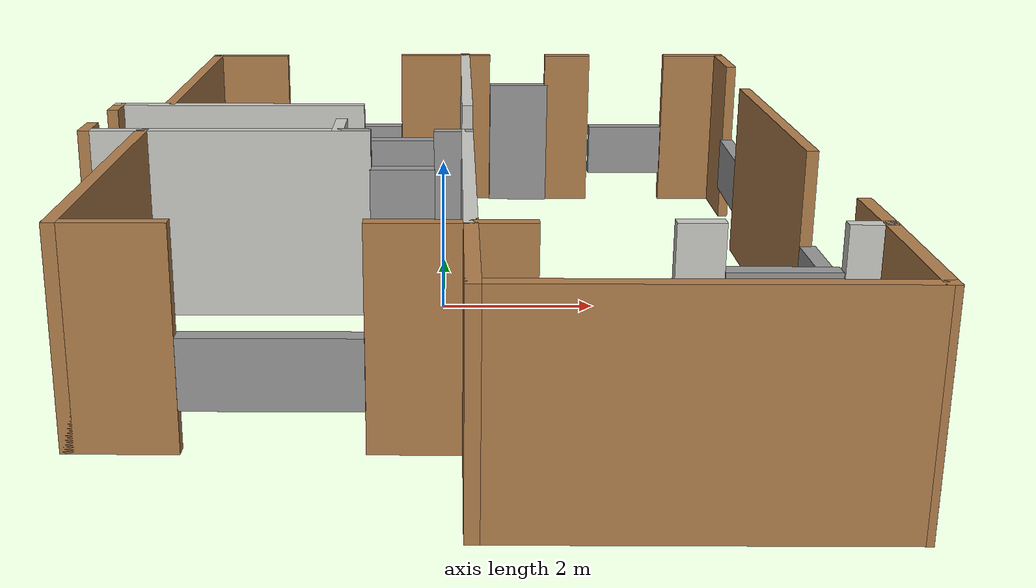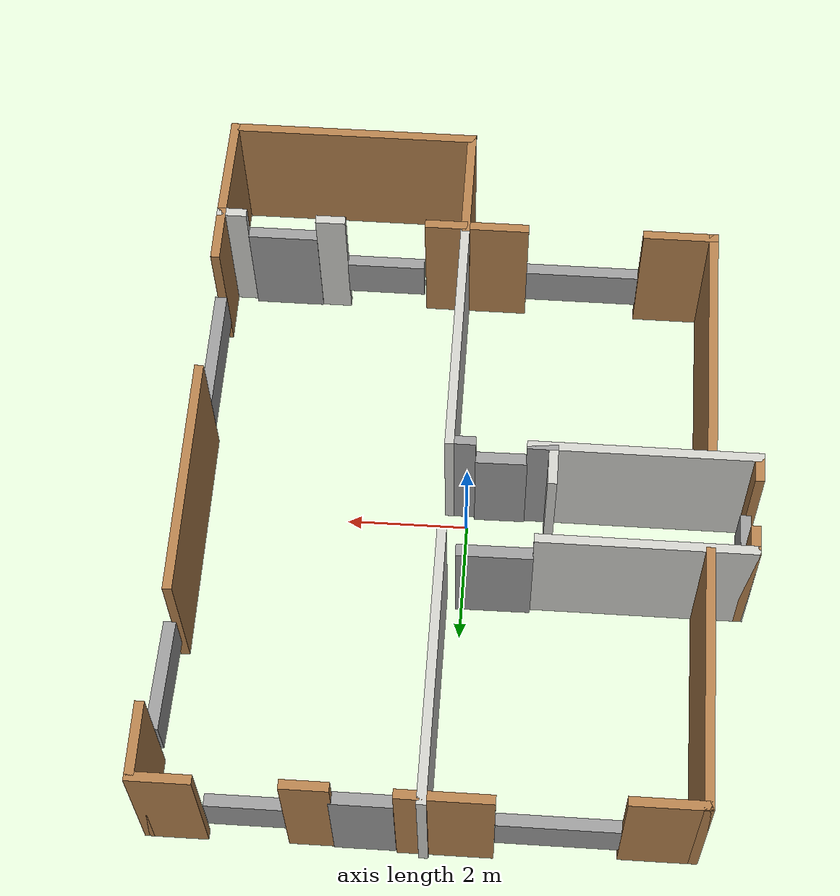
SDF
<?xml version='1.0'?>
<sdf version='1.7'>
  <model name='house'>
    <pose>-0.001405 -0.283975 0 0 -0 0</pose>
    <link name='Door_0'>
      <collision name='Door_0_Collision'>
        <geometry>
          <box>
            <size>1.22582 0.2 2</size>
          </box>
        </geometry>
        <pose>0 0 1 0 -0 0</pose>
      </collision>
      <visual name='Door_0_Visual'>
        <pose>0 0 1 0 -0 0</pose>
        <geometry>
          <box>
            <size>1.22582 0.2 2</size>
          </box>
        </geometry>
        <material>
          <script>
            <uri>file://media/materials/scripts/gazebo.material</uri>
            <name>Gazebo/Grey</name>
          </script>
        </material>
      </visual>
      <pose>-0.509223 1.66981 0 0 0 -3.13482</pose>
    </link>
    <link name='Door_1'>
      <collision name='Door_1_Collision'>
        <geometry>
          <box>
            <size>0.966492 0.2 2</size>
          </box>
        </geometry>
        <pose>0 0 1 0 -0 0</pose>
      </collision>
      <visual name='Door_1_Visual'>
        <pose>0 0 1 0 -0 0</pose>
        <geometry>
          <box>
            <size>0.966492 0.2 2</size>
          </box>
        </geometry>
        <material>
          <script>
            <uri>file://media/materials/scripts/gazebo.material</uri>
            <name>Gazebo/Grey</name>
          </script>
        </material>
      </visual>
      <pose>1.2342 5.85501 0 0 -0 0</pose>
    </link>
    <link name='Door_3'>
      <collision name='Door_3_Collision'>
        <geometry>
          <box>
            <size>1.17221 0.2 2</size>
          </box>
        </geometry>
        <pose>0 0 1 0 -0 0</pose>
      </collision>
      <visual name='Door_3_Visual'>
        <pose>0 0 1 0 -0 0</pose>
        <geometry>
          <box>
            <size>1.17221 0.2 2</size>
          </box>
        </geometry>
        <material>
          <script>
            <uri>file://media/materials/scripts/gazebo.material</uri>
            <name>Gazebo/Grey</name>
          </script>
        </material>
      </visual>
      <pose>3.41888 -4.14228 0 0 0 -3.14129</pose>
    </link>
    <link name='Door_4'>
      <collision name='Door_4_Collision'>
        <geometry>
          <box>
            <size>0.835854 0.2 2</size>
          </box>
        </geometry>
        <pose>0 0 1 0 -0 0</pose>
      </collision>
      <visual name='Door_4_Visual'>
        <pose>0 0 1 0 -0 0</pose>
        <geometry>
          <box>
            <size>0.835854 0.2 2</size>
          </box>
        </geometry>
        <material>
          <script>
            <uri>file://media/materials/scripts/gazebo.material</uri>
            <name>Gazebo/Grey</name>
          </script>
        </material>
      </visual>
      <pose>-0.529344 -0.005516 0 0 -0 0.009241</pose>
    </link>
    <link name='Wall_101'>
      <collision name='Wall_101_Collision'>
        <geometry>
          <box>
            <size>2 0.15 2.5</size>
          </box>
        </geometry>
        <pose>0 0 1.25 0 -0 0</pose>
      </collision>
      <visual name='Wall_101_Visual'>
        <pose>0 0 1.25 0 -0 0</pose>
        <geometry>
          <box>
            <size>2 0.15 2.5</size>
          </box>
        </geometry>
        <material>
          <script>
            <uri>file://media/materials/scripts/gazebo.material</uri>
            <name>Gazebo/Wood</name>
          </script>
          <ambient>1 1 1 1</ambient>
        </material>
        <meta>
          <layer>0</layer>
        </meta>
      </visual>
      <pose>0.306622 -5.04646 0 0 -0 -1.5708</pose>
    </link>
    <link name='Wall_102'>
      <collision name='Wall_102_Collision'>
        <geometry>
          <box>
            <size>4.25 0.15 2.5</size>
          </box>
        </geometry>
        <pose>0 0 1.25 0 -0 0</pose>
      </collision>
      <visual name='Wall_102_Visual'>
        <pose>0 0 1.25 0 -0 0</pose>
        <geometry>
          <box>
            <size>4.25 0.15 2.5</size>
          </box>
        </geometry>
        <material>
          <script>
            <uri>file://media/materials/scripts/gazebo.material</uri>
            <name>Gazebo/Wood</name>
          </script>
          <ambient>1 1 1 1</ambient>
        </material>
        <meta>
          <layer>0</layer>
        </meta>
      </visual>
      <pose>2.35662 -5.97146 0 0 -0 0</pose>
    </link>
    <link name='Wall_103'>
      <collision name='Wall_103_Collision'>
        <geometry>
          <box>
            <size>1.94161 0.15 2.5</size>
          </box>
        </geometry>
        <pose>0 0 1.25 0 -0 0</pose>
      </collision>
      <visual name='Wall_103_Visual'>
        <pose>0 0 1.25 0 -0 0</pose>
        <geometry>
          <box>
            <size>1.94161 0.15 2.5</size>
          </box>
        </geometry>
        <material>
          <script>
            <uri>file://media/materials/scripts/gazebo.material</uri>
            <name>Gazebo/Wood</name>
          </script>
          <ambient>1 1 1 1</ambient>
        </material>
        <meta>
          <layer>0</layer>
        </meta>
      </visual>
      <pose>4.42235 -5.0758 0 0 -0 1.55324</pose>
    </link>
    <link name='Wall_11'>
      <collision name='Wall_11_Collision'>
        <geometry>
          <box>
            <size>4.25 0.15 2.5</size>
          </box>
        </geometry>
        <pose>0 0 1.25 0 -0 0</pose>
      </collision>
      <visual name='Wall_11_Visual'>
        <pose>0 0 1.25 0 -0 0</pose>
        <geometry>
          <box>
            <size>4.25 0.15 2.5</size>
          </box>
        </geometry>
        <material>
          <script>
            <uri>file://media/materials/scripts/gazebo.material</uri>
            <name>Gazebo/CeilingTiled</name>
          </script>
          <ambient>1 1 1 1</ambient>
        </material>
        <meta>
          <layer>0</layer>
        </meta>
      </visual>
      <pose>0.306622 -2.07146 0 0 -0 1.5708</pose>
    </link>
    <link name='Wall_14'>
      <collision name='Wall_14_Collision'>
        <geometry>
          <box>
            <size>0.75 0.15 2.5</size>
          </box>
        </geometry>
        <pose>0 0 1.25 0 -0 0</pose>
      </collision>
      <visual name='Wall_14_Visual'>
        <pose>0 0 1.25 0 -0 0</pose>
        <geometry>
          <box>
            <size>0.75 0.15 2.5</size>
          </box>
        </geometry>
        <material>
          <script>
            <uri>file://media/materials/scripts/gazebo.material</uri>
            <name>Gazebo/CeilingTiled</name>
          </script>
          <ambient>1 1 1 1</ambient>
        </material>
        <meta>
          <layer>0</layer>
        </meta>
      </visual>
      <pose>-1.35343 0.29375 0 0 -0 -1.5708</pose>
    </link>
    <link name='Wall_15'>
      <collision name='Wall_15_Collision'>
        <geometry>
          <box>
            <size>0.5 0.15 2.5</size>
          </box>
        </geometry>
        <pose>0 0 1.25 0 -0 0</pose>
      </collision>
      <visual name='Wall_15_Visual'>
        <pose>0 0 1.25 0 -0 0</pose>
        <geometry>
          <box>
            <size>0.5 0.15 2.5</size>
          </box>
        </geometry>
        <material>
          <script>
            <uri>file://media/materials/scripts/gazebo.material</uri>
            <name>Gazebo/Grey</name>
          </script>
          <ambient>1 1 1 1</ambient>
        </material>
        <meta>
          <layer>0</layer>
        </meta>
      </visual>
      <pose>-1.17843 -0.00625 0 0 -0 0</pose>
    </link>
    <link name='Wall_16'>
      <collision name='Wall_16_Collision'>
        <geometry>
          <box>
            <size>3.75 0.15 2.5</size>
          </box>
        </geometry>
        <pose>0 0 1.25 0 -0 0</pose>
      </collision>
      <visual name='Wall_16_Visual'>
        <pose>0 0 1.25 0 -0 0</pose>
        <geometry>
          <box>
            <size>3.75 0.15 2.5</size>
          </box>
        </geometry>
        <material>
          <script>
            <uri>file://media/materials/scripts/gazebo.material</uri>
            <name>Gazebo/CeilingTiled</name>
          </script>
          <ambient>1 1 1 1</ambient>
        </material>
        <meta>
          <layer>0</layer>
        </meta>
      </visual>
      <pose>-2.80343 -0.00625 0 0 -0 3.14159</pose>
    </link>
    <link name='Wall_17'>
      <collision name='Wall_17_Collision'>
        <geometry>
          <box>
            <size>0.5 0.15 2.5</size>
          </box>
        </geometry>
        <pose>0 0 1.25 0 -0 0</pose>
      </collision>
      <visual name='Wall_17_Visual'>
        <pose>0 0 1.25 0 -0 0</pose>
        <geometry>
          <box>
            <size>0.5 0.15 2.5</size>
          </box>
        </geometry>
        <material>
          <script>
            <uri>file://media/materials/scripts/gazebo.material</uri>
            <name>Gazebo/Wood</name>
          </script>
          <ambient>1 1 1 1</ambient>
        </material>
        <meta>
          <layer>0</layer>
        </meta>
      </visual>
      <pose>-4.60343 0.16875 0 0 -0 1.5708</pose>
    </link>
    <link name='Wall_19'>
      <collision name='Wall_19_Collision'>
        <geometry>
          <box>
            <size>0.5 0.15 2.5</size>
          </box>
        </geometry>
        <pose>0 0 1.25 0 -0 0</pose>
      </collision>
      <visual name='Wall_19_Visual'>
        <pose>0 0 1.25 0 -0 0</pose>
        <geometry>
          <box>
            <size>0.5 0.15 2.5</size>
          </box>
        </geometry>
        <material>
          <script>
            <uri>file://media/materials/scripts/gazebo.material</uri>
            <name>Gazebo/Wood</name>
          </script>
          <ambient>1 1 1 1</ambient>
        </material>
        <meta>
          <layer>0</layer>
        </meta>
      </visual>
      <pose>-4.53893 1.45875 0 0 -0 1.5708</pose>
    </link>
    <link name='Wall_20'>
      <collision name='Wall_20_Collision'>
        <geometry>
          <box>
            <size>3.5 0.15 2.5</size>
          </box>
        </geometry>
        <pose>0 0 1.25 0 -0 0</pose>
      </collision>
      <visual name='Wall_20_Visual'>
        <pose>0 0 1.25 0 -0 0</pose>
        <geometry>
          <box>
            <size>3.5 0.15 2.5</size>
          </box>
        </geometry>
        <material>
          <script>
            <uri>file://media/materials/scripts/gazebo.material</uri>
            <name>Gazebo/CeilingTiled</name>
          </script>
          <ambient>1 1 1 1</ambient>
        </material>
        <meta>
          <layer>0</layer>
        </meta>
      </visual>
      <pose>-2.86393 1.63375 0 0 -0 0</pose>
    </link>
    <link name='Wall_26'>
      <collision name='Wall_26_Collision'>
        <geometry>
          <box>
            <size>4.25 0.15 2.5</size>
          </box>
        </geometry>
        <pose>0 0 1.25 0 -0 0</pose>
      </collision>
      <visual name='Wall_26_Visual'>
        <pose>0 0 1.25 0 -0 0</pose>
        <geometry>
          <box>
            <size>4.25 0.15 2.5</size>
          </box>
        </geometry>
        <material>
          <script>
            <uri>file://media/materials/scripts/gazebo.material</uri>
            <name>Gazebo/Wood</name>
          </script>
          <ambient>1 1 1 1</ambient>
        </material>
        <meta>
          <layer>0</layer>
        </meta>
      </visual>
      <pose>-3.8433 3.75109 0 0 -0 1.5708</pose>
    </link>
    <link name='Wall_27'>
      <collision name='Wall_27_Collision'>
        <geometry>
          <box>
            <size>1.25 0.15 2.5</size>
          </box>
        </geometry>
        <pose>0 0 1.25 0 -0 0</pose>
      </collision>
      <visual name='Wall_27_Visual'>
        <pose>0 0 1.25 0 -0 0</pose>
        <geometry>
          <box>
            <size>1.25 0.15 2.5</size>
          </box>
        </geometry>
        <material>
          <script>
            <uri>file://media/materials/scripts/gazebo.material</uri>
            <name>Gazebo/Wood</name>
          </script>
          <ambient>1 1 1 1</ambient>
        </material>
        <meta>
          <layer>0</layer>
        </meta>
      </visual>
      <pose>-3.2933 5.80109 0 0 -0 0</pose>
    </link>
    <link name='Wall_29'>
      <collision name='Wall_29_Collision'>
        <geometry>
          <box>
            <size>1.5 0.15 2.5</size>
          </box>
        </geometry>
        <pose>0 0 1.25 0 -0 0</pose>
      </collision>
      <visual name='Wall_29_Visual'>
        <pose>0 0 1.25 0 -0 0</pose>
        <geometry>
          <box>
            <size>1.5 0.15 2.5</size>
          </box>
        </geometry>
        <material>
          <script>
            <uri>file://media/materials/scripts/gazebo.material</uri>
            <name>Gazebo/Wood</name>
          </script>
          <ambient>1 1 1 1</ambient>
        </material>
        <meta>
          <layer>0</layer>
        </meta>
      </visual>
      <pose>-0.007528 5.90664 0 0 -0 0</pose>
    </link>
    <link name='Wall_31'>
      <collision name='Wall_31_Collision'>
        <geometry>
          <box>
            <size>4.5 0.15 2.5</size>
          </box>
        </geometry>
        <pose>0 0 1.25 0 -0 0</pose>
      </collision>
      <visual name='Wall_31_Visual'>
        <pose>0 0 1.25 0 -0 0</pose>
        <geometry>
          <box>
            <size>4.5 0.15 2.5</size>
          </box>
        </geometry>
        <material>
          <script>
            <uri>file://media/materials/scripts/gazebo.material</uri>
            <name>Gazebo/CeilingTiled</name>
          </script>
          <ambient>1 1 1 1</ambient>
        </material>
        <meta>
          <layer>0</layer>
        </meta>
      </visual>
      <pose>0.322572 3.79777 0 0 -0 -1.5708</pose>
    </link>
    <link name='Wall_4'>
      <collision name='Wall_4_Collision'>
        <geometry>
          <box>
            <size>4.25 0.15 2.5</size>
          </box>
        </geometry>
        <pose>0 0 1.25 0 -0 0</pose>
      </collision>
      <visual name='Wall_4_Visual'>
        <pose>0 0 1.25 0 -0 0</pose>
        <geometry>
          <box>
            <size>4.25 0.15 2.5</size>
          </box>
        </geometry>
        <material>
          <script>
            <uri>file://media/materials/scripts/gazebo.material</uri>
            <name>Gazebo/Wood</name>
          </script>
          <ambient>1 1 1 1</ambient>
        </material>
        <meta>
          <layer>0</layer>
        </meta>
      </visual>
      <pose>-3.86043 -2.11175 0 0 -0 -1.5708</pose>
    </link>
    <link name='Wall_7'>
      <collision name='Wall_7_Collision'>
        <geometry>
          <box>
            <size>1.25 0.15 2.5</size>
          </box>
        </geometry>
        <pose>0 0 1.25 0 -0 0</pose>
      </collision>
      <visual name='Wall_7_Visual'>
        <pose>0 0 1.25 0 -0 0</pose>
        <geometry>
          <box>
            <size>1.25 0.15 2.5</size>
          </box>
        </geometry>
        <material>
          <script>
            <uri>file://media/materials/scripts/gazebo.material</uri>
            <name>Gazebo/Wood</name>
          </script>
          <ambient>1 1 1 1</ambient>
        </material>
        <meta>
          <layer>0</layer>
        </meta>
      </visual>
      <pose>-3.31043 -4.16175 0 0 -0 0</pose>
    </link>
    <link name='Wall_82'>
      <collision name='Wall_82_Collision'>
        <geometry>
          <box>
            <size>0.75 0.15 2.5</size>
          </box>
        </geometry>
        <pose>0 0 1.25 0 -0 0</pose>
      </collision>
      <visual name='Wall_82_Visual'>
        <pose>0 0 1.25 0 -0 0</pose>
        <geometry>
          <box>
            <size>0.75 0.15 2.5</size>
          </box>
        </geometry>
        <material>
          <script>
            <uri>file://media/materials/scripts/gazebo.material</uri>
            <name>Gazebo/Wood</name>
          </script>
          <ambient>1 1 1 1</ambient>
        </material>
        <meta>
          <layer>0</layer>
        </meta>
      </visual>
      <pose>2.04473 5.86697 0 0 -0 0</pose>
    </link>
    <link name='Wall_84'>
      <collision name='Wall_84_Collision'>
        <geometry>
          <box>
            <size>1 0.15 2.5</size>
          </box>
        </geometry>
        <pose>0 0 1.25 0 -0 0</pose>
      </collision>
      <visual name='Wall_84_Visual'>
        <pose>0 0 1.25 0 -0 0</pose>
        <geometry>
          <box>
            <size>1 0.15 2.5</size>
          </box>
        </geometry>
        <material>
          <script>
            <uri>file://media/materials/scripts/gazebo.material</uri>
            <name>Gazebo/Wood</name>
          </script>
          <ambient>1 1 1 1</ambient>
        </material>
        <meta>
          <layer>0</layer>
        </meta>
      </visual>
      <pose>4.17843 5.88436 0 0 -0 0</pose>
    </link>
    <link name='Wall_85'>
      <collision name='Wall_85_Collision'>
        <geometry>
          <box>
            <size>1.25 0.15 2.5</size>
          </box>
        </geometry>
        <pose>0 0 1.25 0 -0 0</pose>
      </collision>
      <visual name='Wall_85_Visual'>
        <pose>0 0 1.25 0 -0 0</pose>
        <geometry>
          <box>
            <size>1.25 0.15 2.5</size>
          </box>
        </geometry>
        <material>
          <script>
            <uri>file://media/materials/scripts/gazebo.material</uri>
            <name>Gazebo/Wood</name>
          </script>
          <ambient>1 1 1 1</ambient>
        </material>
        <meta>
          <layer>0</layer>
        </meta>
      </visual>
      <pose>4.60343 5.33436 0 0 -0 -1.5708</pose>
    </link>
    <link name='Wall_89'>
      <collision name='Wall_89_Collision'>
        <geometry>
          <box>
            <size>0.5 0.15 2.5</size>
          </box>
        </geometry>
        <pose>0 0 1.25 0 -0 0</pose>
      </collision>
      <visual name='Wall_89_Visual'>
        <pose>0 0 1.25 0 -0 0</pose>
        <geometry>
          <box>
            <size>0.5 0.15 2.5</size>
          </box>
        </geometry>
        <material>
          <script>
            <uri>file://media/materials/scripts/gazebo.material</uri>
            <name>Gazebo/CeilingTiled</name>
          </script>
          <ambient>1 1 1 1</ambient>
        </material>
        <meta>
          <layer>0</layer>
        </meta>
      </visual>
      <pose>2.58443 -4.1272 0 0 -0 0</pose>
    </link>
    <link name='Wall_9'>
      <collision name='Wall_9_Collision'>
        <geometry>
          <box>
            <size>1.75 0.15 2.5</size>
          </box>
        </geometry>
        <pose>0 0 1.25 0 -0 0</pose>
      </collision>
      <visual name='Wall_9_Visual'>
        <pose>0 0 1.25 0 -0 0</pose>
        <geometry>
          <box>
            <size>1.75 0.15 2.5</size>
          </box>
        </geometry>
        <material>
          <script>
            <uri>file://media/materials/scripts/gazebo.material</uri>
            <name>Gazebo/Wood</name>
          </script>
          <ambient>1 1 1 1</ambient>
        </material>
        <meta>
          <layer>0</layer>
        </meta>
      </visual>
      <pose>0.113572 -4.15575 0 0 -0 0</pose>
    </link>
    <link name='Wall_92'>
      <collision name='Wall_92_Collision'>
        <geometry>
          <box>
            <size>0.5 0.15 2.5</size>
          </box>
        </geometry>
        <pose>0 0 1.25 0 -0 0</pose>
      </collision>
      <visual name='Wall_92_Visual'>
        <pose>0 0 1.25 0 -0 0</pose>
        <geometry>
          <box>
            <size>0.5 0.15 2.5</size>
          </box>
        </geometry>
        <material>
          <script>
            <uri>file://media/materials/scripts/gazebo.material</uri>
            <name>Gazebo/CeilingTiled</name>
          </script>
          <ambient>1 1 1 1</ambient>
        </material>
        <meta>
          <layer>0</layer>
        </meta>
      </visual>
      <pose>4.26307 -4.18013 0 0 -0 0</pose>
    </link>
    <link name='Wall_93'>
      <collision name='Wall_93_Collision'>
        <geometry>
          <box>
            <size>1 0.15 2.5</size>
          </box>
        </geometry>
        <pose>0 0 1.25 0 -0 0</pose>
      </collision>
      <visual name='Wall_93_Visual'>
        <pose>0 0 1.25 0 -0 0</pose>
        <geometry>
          <box>
            <size>1 0.15 2.5</size>
          </box>
        </geometry>
        <material>
          <script>
            <uri>file://media/materials/scripts/gazebo.material</uri>
            <name>Gazebo/Wood</name>
          </script>
          <ambient>1 1 1 1</ambient>
        </material>
        <meta>
          <layer>0</layer>
        </meta>
      </visual>
      <pose>4.43807 -3.75513 0 0 -0 1.5708</pose>
    </link>
    <link name='Wall_95'>
      <collision name='Wall_95_Collision'>
        <geometry>
          <box>
            <size>4 0.15 2.5</size>
          </box>
        </geometry>
        <pose>0 0 1.25 0 -0 0</pose>
      </collision>
      <visual name='Wall_95_Visual'>
        <pose>0 0 1.25 0 -0 0</pose>
        <geometry>
          <box>
            <size>4 0.15 2.5</size>
          </box>
        </geometry>
        <material>
          <script>
            <uri>file://media/materials/scripts/gazebo.material</uri>
            <name>Gazebo/Wood</name>
          </script>
          <ambient>1 1 1 1</ambient>
        </material>
        <meta>
          <layer>0</layer>
        </meta>
      </visual>
      <pose>4.43999 0.863424 0 0 -0 1.5708</pose>
    </link>
    <link name='Wall_99'>
      <collision name='Wall_99_Collision'>
        <geometry>
          <box>
            <size>0.5 0.15 2.5</size>
          </box>
        </geometry>
        <pose>0 0 1.25 0 -0 0</pose>
      </collision>
      <visual name='Wall_99_Visual'>
        <pose>0 0 1.25 0 -0 0</pose>
        <geometry>
          <box>
            <size>0.5 0.15 2.5</size>
          </box>
        </geometry>
        <material>
          <script>
            <uri>file://media/materials/scripts/gazebo.material</uri>
            <name>Gazebo/Grey</name>
          </script>
          <ambient>1 1 1 1</ambient>
        </material>
        <meta>
          <layer>0</layer>
        </meta>
      </visual>
      <pose>0.131622 -0.021462 0 0 -0 3.14159</pose>
    </link>
    <link name='Window_0'>
      <collision name='Window_0_Collision'>
        <geometry>
          <box>
            <size>1.2087 0.2 0.8</size>
          </box>
        </geometry>
        <pose>0 0 0.4 0 -0 0</pose>
      </collision>
      <visual name='Window_0_Visual'>
        <pose>0 0 0.4 0 -0 0</pose>
        <geometry>
          <box>
            <size>1.2087 0.2 0.8</size>
          </box>
        </geometry>
        <material>
          <script>
            <uri>file://media/materials/scripts/gazebo.material</uri>
            <name>Gazebo/Grey</name>
          </script>
        </material>
      </visual>
      <pose>3.04473 5.76262 0.5 0 -0 0</pose>
    </link>
    <link name='Window_1'>
      <collision name='Window_1_Collision'>
        <geometry>
          <box>
            <size>1.90435 0.2 0.8</size>
          </box>
        </geometry>
        <pose>0 0 0.4 0 -0 0</pose>
      </collision>
      <visual name='Window_1_Visual'>
        <pose>0 0 0.4 0 -0 0</pose>
        <geometry>
          <box>
            <size>1.90435 0.2 0.8</size>
          </box>
        </geometry>
        <material>
          <script>
            <uri>file://media/materials/scripts/gazebo.material</uri>
            <name>Gazebo/Grey</name>
          </script>
        </material>
      </visual>
      <pose>-1.71179 5.78871 0.5 0 -0 0</pose>
    </link>
    <link name='Window_3'>
      <collision name='Window_3_Collision'>
        <geometry>
          <box>
            <size>1.32174 0.2 0.8</size>
          </box>
        </geometry>
        <pose>0 0 0.4 0 -0 0</pose>
      </collision>
      <visual name='Window_3_Visual'>
        <pose>0 0 0.4 0 -0 0</pose>
        <geometry>
          <box>
            <size>1.32174 0.2 0.8</size>
          </box>
        </geometry>
        <material>
          <script>
            <uri>file://media/materials/scripts/gazebo.material</uri>
            <name>Gazebo/Grey</name>
          </script>
        </material>
      </visual>
      <pose>1.67842 -4.14436 0.5 0 -0 0</pose>
    </link>
    <link name='Window_5'>
      <collision name='Window_5_Collision'>
        <geometry>
          <box>
            <size>1.92029 0.2 0.8</size>
          </box>
        </geometry>
        <pose>0 0 0.4 0 -0 0</pose>
      </collision>
      <visual name='Window_5_Visual'>
        <pose>0 0 0.4 0 -0 0</pose>
        <geometry>
          <box>
            <size>1.92029 0.2 0.8</size>
          </box>
        </geometry>
        <material>
          <script>
            <uri>file://media/materials/scripts/gazebo.material</uri>
            <name>Gazebo/Grey</name>
          </script>
        </material>
      </visual>
      <pose>-1.71823 -4.16621 0.5 0 -0 0</pose>
    </link>
    <link name='Window_6'>
      <collision name='Window_6_Collision'>
        <geometry>
          <box>
            <size>2.11145 0.2 0.8</size>
          </box>
        </geometry>
        <pose>0 0 0.4 0 -0 0</pose>
      </collision>
      <visual name='Window_6_Visual'>
        <pose>0 0 0.4 0 -0 0</pose>
        <geometry>
          <box>
            <size>2.11145 0.2 0.8</size>
          </box>
        </geometry>
        <material>
          <script>
            <uri>file://media/materials/scripts/gazebo.material</uri>
            <name>Gazebo/Grey</name>
          </script>
        </material>
      </visual>
      <pose>4.45853 -2.17962 0.5 0 -0 1.56388</pose>
    </link>
    <link name='Window_7'>
      <collision name='Window_7_Collision'>
        <geometry>
          <box>
            <size>1.81192 0.2 0.8</size>
          </box>
        </geometry>
        <pose>0 0 0.4 0 -0 0</pose>
      </collision>
      <visual name='Window_7_Visual'>
        <pose>0 0 0.4 0 -0 0</pose>
        <geometry>
          <box>
            <size>1.81192 0.2 0.8</size>
          </box>
        </geometry>
        <material>
          <script>
            <uri>file://media/materials/scripts/gazebo.material</uri>
            <name>Gazebo/Grey</name>
          </script>
        </material>
      </visual>
      <pose>4.56376 3.7826 0.5 0 -0 1.54266</pose>
    </link>
    <link name='Window_8'>
      <collision name='Window_8_Collision'>
        <geometry>
          <box>
            <size>0.8 0.17 0.8</size>
          </box>
        </geometry>
        <pose>0 0 0.4 0 -0 0</pose>
      </collision>
      <visual name='Window_8_Visual'>
        <pose>0 0 0.4 0 -0 0</pose>
        <geometry>
          <box>
            <size>0.8 0.17 0.8</size>
          </box>
        </geometry>
        <material>
          <script>
            <uri>file://media/materials/scripts/gazebo.material</uri>
            <name>Gazebo/Grey</name>
          </script>
        </material>
      </visual>
      <pose>-4.52947 0.809725 0.5 0 -0 -1.56138</pose>
    </link>
    <static>1</static>
  </model>
</sdf>
